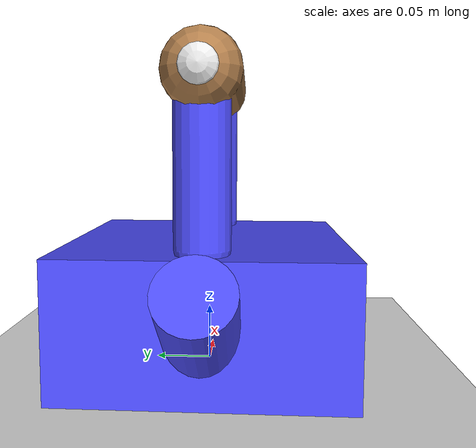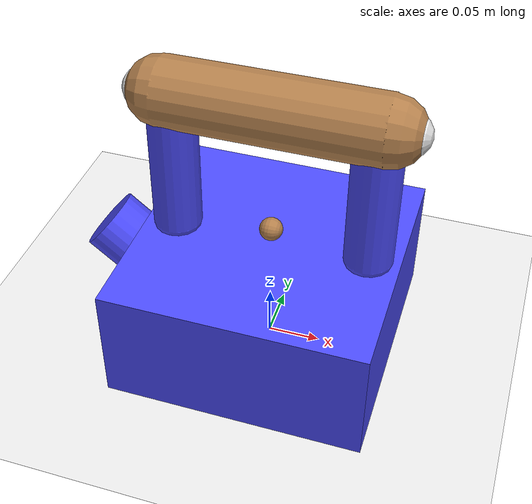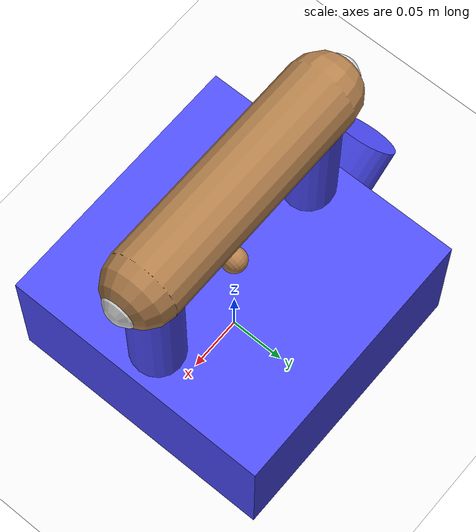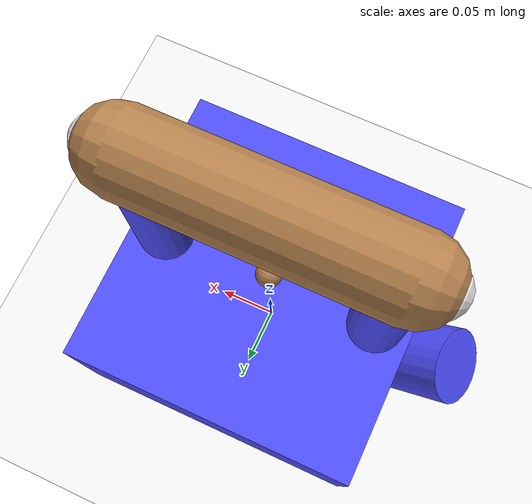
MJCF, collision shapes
<mujoco model="kettle">
    <compiler angle="radian" meshdir="" texturedir=""/>
    <include file='../scenes/basic_scene.xml'/>
    <include file="../kitchen/assets/kettle_asset.xml"/>

    <worldbody>

        <body>
		    <include file="../kitchen/assets/kettle_chain.xml"/>
        </body>

    </worldbody>

</mujoco>

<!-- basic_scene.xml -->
<mujocoinclude>
    <asset>
        <texture name="skybox" type="skybox" builtin="gradient" rgb1=".08 .09 .10" rgb2="0 0 0"
               width="800" height="800" mark="random" markrgb=".8 .8 .8"/>

        <texture name="texplane" type="2d" height="1" width="1" file="../scenes/textures/white_marble_tile2.png" />
        <material name='MatPlane' reflectance='0.05' texture="texplane" texrepeat="4 4" texuniform="true"/>
    </asset>

    <visual>
        <quality shadowsize="4048"/>
    </visual>

    <worldbody>
        <light directional='true' diffuse='.3 .3 .3' specular='0.3 0.3 0.3' pos='-1 -1 1' dir='1 1 -1'/>
        <light directional='true' diffuse='.3 .3 .3' specular='0.3 0.3 0.3' pos='1 -1 1' dir='-1 1 -1'/>
        <light directional='true' diffuse='.3 .3 .3' specular='0.3 0.3 0.3' pos='0 1 1' dir='0 -1 -1'/>
        <geom name='floor' pos='0 0 0' size='5 5 .1' conaffinity='1' contype='1' type='plane' material="MatPlane" condim='3'/>
        <site name='xaxis' pos='.5 0 0' size='.005 .5' type='capsule' rgba='1 0 0 .25' euler='0 1.57 0' group='3'/>
        <site name='yaxis' pos='0 .5 0' size='.005 .5' type='capsule' rgba='0 1 0 .25' euler='1.57 0 0' group='3'/>
    </worldbody>
</mujocoinclude>

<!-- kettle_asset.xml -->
<mujocoinclude>
    <compiler inertiafromgeom="auto" inertiagrouprange="4 4" angle="radian"/>

    <asset>
        <mesh file="../kitchen/meshes/kettle.stl" name="kettle"/>
        <mesh file="../kitchen/meshes/kettlehandle.stl" name="kettlehandle"/>

        <texture name="T_kettle_metal" type="cube" height="1" width="1" file="../kitchen/textures/metal1.png" />
        <texture name="T_kettle_wood" type="cube" height="1" width="1" file="../kitchen/textures/wood1.png" />

        <material name="kettle_wood" rgba="1 1 1 1" texture="T_kettle_wood" texrepeat="3 3" reflectance="1" shininess="1" texuniform="false" />
        <material name="kettle_metal" rgba="1 1 1 1" texture="T_kettle_metal" texrepeat="3 3" reflectance="1" shininess="1" texuniform="false" />
        <material name="kettle_white" rgba=".9 .9 .9 1" reflectance="1" shininess="1" />
        <material name="kettle_collision_blue" rgba="0.3 0.3 1.0 0.5" shininess="0" specular="0" />
    </asset>
    <default class="kettle">
        <joint damping="2" frictionloss="2" armature=".01" limited="true" />
        <geom conaffinity="0" contype="0" group="1" material="kettle_white" type="mesh"/>
        <default class="kettle_collision">
            <geom conaffinity="1" condim="4" contype="1" group="4" margin="0.001" material="kettle_collision_blue" solimp=".8 .9 .01" solref=".02 1" type="mesh"/>
        </default>
    </default>
</mujocoinclude>

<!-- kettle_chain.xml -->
<mujocoinclude>

    <body name="kettleroot" childclass="kettle">
        <geom mesh="kettle"/>
        <geom material="kettle_wood" euler="0 1.57 0" pos="0 0 0.259" size="0.032 0.1" type="capsule"/>
        <geom material="kettle_wood" euler="0 1.57 0" pos="0 0 0.13" size="0.011" type="sphere"/>
        <geom euler="0 1.57 0" pos="0 0 0.259" size="0.02 0.115" type="capsule"/>
        <geom pos="0.092 0 0.186" size="0.02 0.07" type="capsule"/>
        <geom pos="-0.092 0 0.185" size="0.02 0.07" type="capsule"/>
        <geom material="kettle_wood" pos="-0.092 0 0.22" size="0.022 0.015" type="capsule"/>
        <geom material="kettle_wood" pos="0.092 0 0.22" size="0.022 0.015" type="capsule"/>

        <geom class="kettle_collision" euler="0 1.57 0" pos="0 0 0.259" size="0.032 0.1" type="capsule" mass='.02'/>
        <geom class="kettle_collision" pos="0.092 0 0.18" size="0.023 0.06" type="capsule" mass='.02'/>
        <geom class="kettle_collision" pos="-0.092 0 0.18" size="0.023 0.06" type="capsule" mass='.02'/>
        <geom class="kettle_collision" euler="0 2.25 0" pos="-0.126 0 0.07" size="0.031 0.05" type="cylinder" mass='.02'/>
        <geom class="kettle_collision" pos="0 0 0.058" size="0.122 0.122 0.058" type="box" mass='.8'/>
        <site type="sphere" name="kettle_site" pos="0 0 0.259" size=".01" group="3" rgba="1 0 0 1"/>
    </body>
</mujocoinclude>
